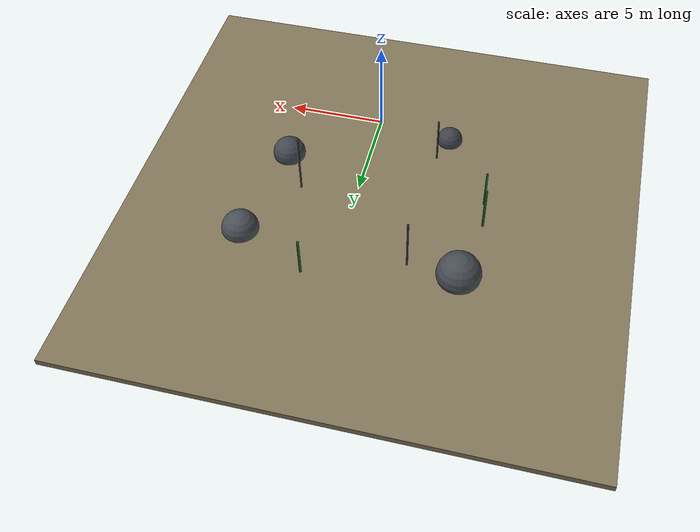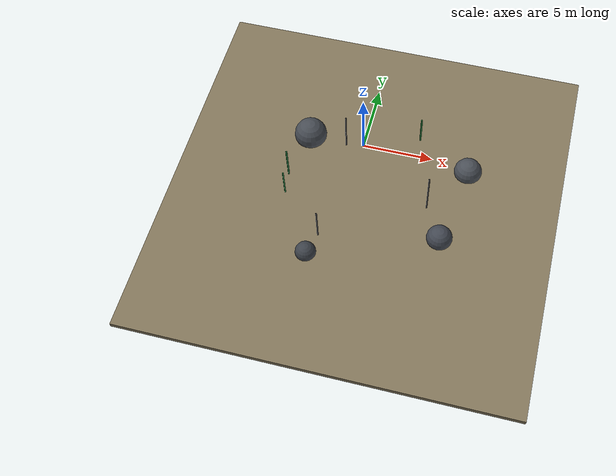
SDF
<sdf version="1.6">
 <world name="underwater_apriltag">
  <scene>
   <ambient>0.30 0.45 0.58 1</ambient>
   <background>0.01 0.07 0.13 1</background>
   <shadows>true</shadows>
   <fog><color>0.02 0.14 0.24 1</color><type>linear</type><density>0.025</density></fog>
  </scene>
  <gravity>0 0 0</gravity>
  <physics type="ode">
   <max_step_size>0.002</max_step_size>
   <real_time_update_rate>500</real_time_update_rate>
   <real_time_factor>1.0</real_time_factor>
  </physics>
  <light type="directional" name="underwater_sun">
   <pose>0 0 12 0 0 0</pose>
   <diffuse>0.55 0.75 0.90 1</diffuse>
   <specular>0.10 0.20 0.30 1</specular>
   <attenuation>
    <range>60</range>
    <constant>0.9</constant>
    <linear>0.02</linear>
    <quadratic>0.0</quadratic>
   </attenuation>
   <direction>-0.25 0.20 -0.95</direction>
  </light>
  <model name="seabed">
   <static>true</static>
   <link name="link">
    <pose>0 0 -6.7 0 0 0</pose>
    <visual name="sand">
     <geometry><box><size>30 30 0.4</size></box></geometry>
     <material>
      <ambient>0.40 0.38 0.30 1</ambient>
      <diffuse>0.52 0.47 0.36 1</diffuse>
      <specular>0.05 0.05 0.04 1</specular>
     </material>
    </visual>
    <collision name="collision"><geometry><box><size>30 30 0.4</size></box></geometry></collision>
   </link>
  </model>
  <model name="rock_0">
   <static>true</static>
   <pose>-5.5 4.5 -6.2 0 0 0</pose>
   <link name="link">
    <visual name="v">
     <geometry><sphere><radius>1.3</radius></sphere></geometry>
     <material><ambient>0.20 0.22 0.24 1</ambient><diffuse>0.28 0.30 0.33 1</diffuse></material>
    </visual>
   </link>
  </model>
  <model name="rock_1">
   <static>true</static>
   <pose>6.5 -2.5 -6.3 0 0 0</pose>
   <link name="link">
    <visual name="v">
     <geometry><sphere><radius>1.0</radius></sphere></geometry>
     <material><ambient>0.18 0.20 0.23 1</ambient><diffuse>0.26 0.28 0.32 1</diffuse></material>
    </visual>
   </link>
  </model>
  <model name="rock_2">
   <static>true</static>
   <pose>-3.0 -6.0 -6.4 0 0 0</pose>
   <link name="link">
    <visual name="v">
     <geometry><sphere><radius>0.8</radius></sphere></geometry>
     <material><ambient>0.16 0.18 0.20 1</ambient><diffuse>0.24 0.26 0.29 1</diffuse></material>
    </visual>
   </link>
  </model>
  <model name="rock_3">
   <static>true</static>
   <pose>7.5 4.0 -6.4 0 0 0</pose>
   <link name="link">
    <visual name="v">
     <geometry><sphere><radius>1.1</radius></sphere></geometry>
     <material><ambient>0.20 0.22 0.24 1</ambient><diffuse>0.29 0.31 0.34 1</diffuse></material>
    </visual>
   </link>
  </model>
  <model name="kelp_0">
   <static>true</static>
   <pose>-6.2 0.5 -5.0 0 0 0</pose>
   <link name="link">
    <visual name="v">
     <geometry><cylinder><radius>0.07</radius><length>3.0</length></cylinder></geometry>
     <material><ambient>0.06 0.28 0.12 1</ambient><diffuse>0.08 0.36 0.16 1</diffuse></material>
    </visual>
   </link>
  </model>
  <model name="kelp_1">
   <static>true</static>
   <pose>-6.0 -1.2 -5.2 0 0 0</pose>
   <link name="link">
    <visual name="v">
     <geometry><cylinder><radius>0.06</radius><length>2.6</length></cylinder></geometry>
     <material><ambient>0.07 0.30 0.14 1</ambient><diffuse>0.10 0.40 0.18 1</diffuse></material>
    </visual>
   </link>
  </model>
  <model name="kelp_2">
   <static>true</static>
   <pose>3.2 6.2 -5.3 0 0 0</pose>
   <link name="link">
    <visual name="v">
     <geometry><cylinder><radius>0.07</radius><length>2.8</length></cylinder></geometry>
     <material><ambient>0.06 0.28 0.12 1</ambient><diffuse>0.09 0.37 0.15 1</diffuse></material>
    </visual>
   </link>
  </model>
  <model name="tagpole_0">
   <static>true</static>
   <pose>5.0 0.0 -4.55 0 0 0</pose>
   <link name="link">
    <visual name="v">
     <geometry><cylinder><radius>0.06</radius><length>3.9</length></cylinder></geometry>
     <material><ambient>0.10 0.10 0.10 1</ambient><diffuse>0.15 0.15 0.15 1</diffuse></material>
    </visual>
   </link>
  </model>
  <model name="tagpole_1">
   <static>true</static>
   <pose>-2.5 4.33 -4.9 0 0 0</pose>
   <link name="link">
    <visual name="v">
     <geometry><cylinder><radius>0.06</radius><length>3.7</length></cylinder></geometry>
     <material><ambient>0.10 0.10 0.10 1</ambient><diffuse>0.15 0.15 0.15 1</diffuse></material>
    </visual>
   </link>
  </model>
  <model name="tagpole_2">
   <static>true</static>
   <pose>-2.5 -4.33 -5.1 0 0 0</pose>
   <link name="link">
    <visual name="v">
     <geometry><cylinder><radius>0.06</radius><length>3.3</length></cylinder></geometry>
     <material><ambient>0.10 0.10 0.10 1</ambient><diffuse>0.15 0.15 0.15 1</diffuse></material>
    </visual>
   </link>
  </model>
  <model name="scene_camera">
   <static>true</static>
   <pose>2.0 -6.2 -1.4 0 -0.10 1.5708</pose>
   <link name="link">
    <sensor name="camera" type="camera">
     <update_rate>15</update_rate>
     <camera>
      <horizontal_fov>1.15</horizontal_fov>
      <image><width>960</width><height>540</height></image>
      <clip><near>0.1</near><far>100</far></clip>
     </camera>
     <plugin name="camera_controller" filename="libgazebo_ros_camera.so">
      <ros><namespace>/scene</namespace></ros>
      <cameraName>camera</cameraName>
      <imageTopicName>image_raw</imageTopicName>
      <cameraInfoTopicName>camera_info</cameraInfoTopicName>
      <frameName>scene_camera_link</frameName>
     </plugin>
    </sensor>
   </link>
  </model>
  <plugin name="gazebo_ros_state" filename="libgazebo_ros_state.so">
   <ros><namespace>/gazebo</namespace></ros>
   <update_rate>30.0</update_rate>
  </plugin>
 </world>
</sdf>
